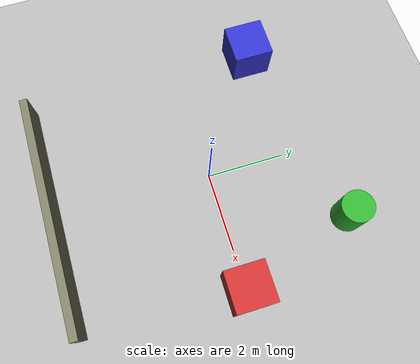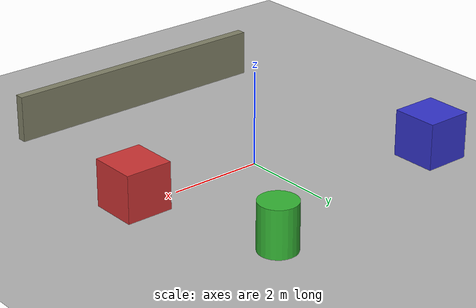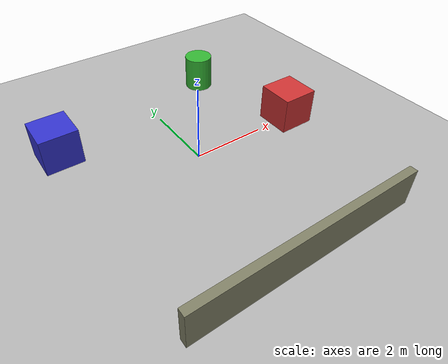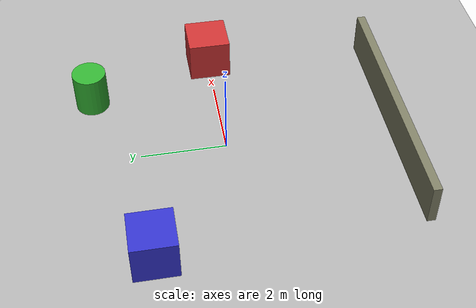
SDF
<?xml version="1.0"?>
<sdf version="1.9">
  <world name="scout_world">

    <!-- Physics: ODE, 1 ms step -->
    <physics name="1ms" type="ignored">
      <max_step_size>0.001</max_step_size>
      <real_time_factor>1.0</real_time_factor>
    </physics>

    <!-- Required Gazebo Harmonic plugins -->
    <plugin filename="gz-sim-physics-system"
            name="gz::sim::systems::Physics"/>
    <plugin filename="gz-sim-user-commands-system"
            name="gz::sim::systems::UserCommands"/>
    <plugin filename="gz-sim-scene-broadcaster-system"
            name="gz::sim::systems::SceneBroadcaster"/>
    <plugin filename="gz-sim-sensors-system"
            name="gz::sim::systems::Sensors">
      <render_engine>ogre2</render_engine>
    </plugin>
    <plugin filename="gz-sim-imu-system"
            name="gz::sim::systems::Imu"/>

    <!-- Lighting -->
    <light type="directional" name="sun">
      <cast_shadows>true</cast_shadows>
      <pose>0 0 10 0 0 0</pose>
      <diffuse>0.9 0.9 0.9 1</diffuse>
      <specular>0.1 0.1 0.1 1</specular>
      <direction>-0.5 0.1 -0.9</direction>
    </light>

    <!-- Ground plane -->
    <model name="ground_plane">
      <static>true</static>
      <link name="link">
        <collision name="collision">
          <geometry>
            <plane><normal>0 0 1</normal><size>50 50</size></plane>
          </geometry>
          <surface>
            <friction>
              <ode><mu>0.8</mu><mu2>0.8</mu2></ode>
            </friction>
          </surface>
        </collision>
        <visual name="visual">
          <geometry>
            <plane><normal>0 0 1</normal><size>50 50</size></plane>
          </geometry>
          <material>
            <ambient>0.6 0.6 0.6 1</ambient>
            <diffuse>0.7 0.7 0.7 1</diffuse>
          </material>
        </visual>
      </link>
    </model>

    <!-- ── Obstacles for navigation testing ── -->

    <!-- Box obstacle 1 -->
    <model name="box_1">
      <static>true</static>
      <pose>3 0 0.5 0 0 0</pose>
      <link name="link">
        <collision name="col"><geometry><box><size>1 1 1</size></box></geometry></collision>
        <visual name="vis">
          <geometry><box><size>1 1 1</size></box></geometry>
          <material><ambient>0.8 0.2 0.2 1</ambient><diffuse>0.8 0.2 0.2 1</diffuse></material>
        </visual>
      </link>
    </model>

    <!-- Box obstacle 2 -->
    <model name="box_2">
      <static>true</static>
      <pose>-3 2 0.5 0 0 0</pose>
      <link name="link">
        <collision name="col"><geometry><box><size>1 1 1</size></box></geometry></collision>
        <visual name="vis">
          <geometry><box><size>1 1 1</size></box></geometry>
          <material><ambient>0.2 0.2 0.8 1</ambient><diffuse>0.2 0.2 0.8 1</diffuse></material>
        </visual>
      </link>
    </model>

    <!-- Cylinder obstacle -->
    <model name="cylinder_1">
      <static>true</static>
      <pose>2 3 0.5 0 0 0</pose>
      <link name="link">
        <collision name="col"><geometry><cylinder><radius>0.4</radius><length>1.0</length></cylinder></geometry></collision>
        <visual name="vis">
          <geometry><cylinder><radius>0.4</radius><length>1.0</length></cylinder></geometry>
          <material><ambient>0.2 0.7 0.2 1</ambient><diffuse>0.2 0.7 0.2 1</diffuse></material>
        </visual>
      </link>
    </model>

    <!-- Wall segment -->
    <model name="wall_1">
      <static>true</static>
      <pose>0 -4 0.5 0 0 0</pose>
      <link name="link">
        <collision name="col"><geometry><box><size>6 0.2 1</size></box></geometry></collision>
        <visual name="vis">
          <geometry><box><size>6 0.2 1</size></box></geometry>
          <material><ambient>0.5 0.5 0.4 1</ambient><diffuse>0.5 0.5 0.4 1</diffuse></material>
        </visual>
      </link>
    </model>

  </world>
</sdf>
